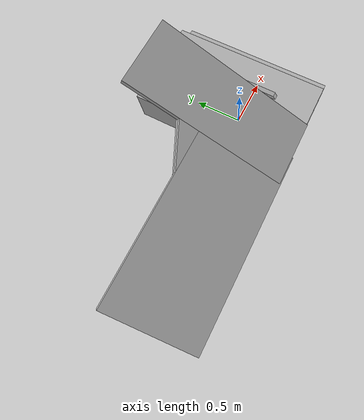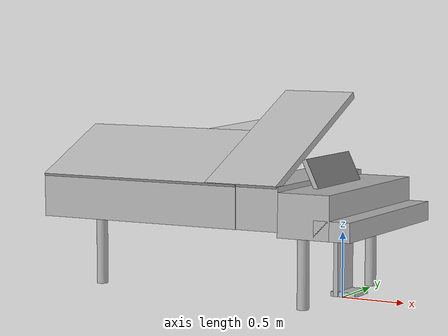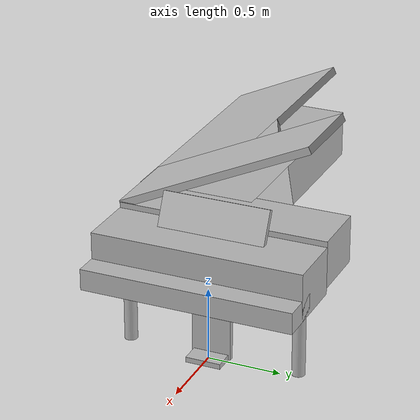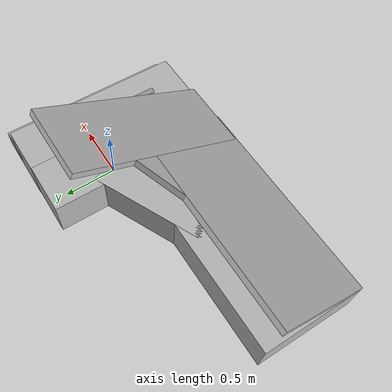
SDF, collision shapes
<?xml version="1.0" encoding="UTF-8"?>
<sdf version="1.6">
  <model name="Piano">
    <static>true</static>
    <link name="base_link">
      <visual name="visual">
        <geometry>
          <mesh>
            <uri>meshes/piano.dae</uri>
          </mesh>
        </geometry>
      </visual>
      <collision name="Box001">
        <pose>0.243129 0.00788122 0.603422 0.0 0.0 0.0</pose>
        <geometry>
          <box>
            <size>0.287229 1.44324 0.144997</size>
          </box>
        </geometry>
      </collision>
      <collision name="Box002">
        <pose>0.0175615 0.00788122 0.695495 0.0 0.0 0.0</pose>
        <geometry>
          <box>
            <size>0.413609 1.44324 0.329144</size>
          </box>
        </geometry>
      </collision>
      <collision name="Box003">
        <pose>-0.392478 0.00788116 0.734841 0.0 0.0 0.0</pose>
        <geometry>
          <box>
            <size>0.413609 1.44324 0.329144</size>
          </box>
        </geometry>
      </collision>
      <collision name="Box004">
        <pose>-1.36447 -0.325266 0.734841 0.0 0.0 0.0</pose>
        <geometry>
          <box>
            <size>1.67512 0.793779 0.329144</size>
          </box>
        </geometry>
      </collision>
      <collision name="Box005">
        <pose>-0.803242 -0.111498 0.734841 0.0 0.0 0.444273</pose>
        <geometry>
          <box>
            <size>0.921315 0.627086 0.329144</size>
          </box>
        </geometry>
      </collision>
      <collision name="Box006">
        <pose>-0.0877448 -0.00134659 0.944505 2.01187 0.0 -1.5708</pose>
        <geometry>
          <box>
            <size>0.73488 0.268691 0.036744</size>
          </box>
        </geometry>
      </collision>
      <collision name="Box007">
        <pose>-0.488626 -0.0578904 1.18515 0.436548 0.0 0.0</pose>
        <geometry>
          <box>
            <size>0.588897 1.44324 0.052663</size>
          </box>
        </geometry>
      </collision>
      <collision name="Box008">
        <pose>-1.36447 -0.359794 1.04429 0.436548 0.0 0.0</pose>
        <geometry>
          <box>
            <size>1.67512 0.793779 0.0526631</size>
          </box>
        </geometry>
      </collision>
      <collision name="Box009">
        <pose>-0.803242 -0.166074 1.13467 0.398713 -0.182742 0.407253</pose>
        <geometry>
          <box>
            <size>0.921315 0.627086 0.0526631</size>
          </box>
        </geometry>
      </collision>
      <collision name="Box010">
        <pose>-0.00645127 0.0227667 0.283169 1.5708 0.0 -1.5708</pose>
        <geometry>
          <box>
            <size>0.268691 0.519009 0.0353184</size>
          </box>
        </geometry>
      </collision>
      <collision name="Box011">
        <pose>0.0450188 0.0232733 0.0405282 0.0 0.0 0.0</pose>
        <geometry>
          <box>
            <size>0.196833 0.240713 0.0358812</size>
          </box>
        </geometry>
      </collision>
      <collision name="Cylinder001">
        <pose>-0.0444827 -0.580177 0.27691 0.0 0.0 0.0</pose>
        <geometry>
          <cylinder>
            <length>0.553819</length>
            <radius>0.0438295</radius>
          </cylinder>
        </geometry>
      </collision>
      <collision name="Cylinder002">
        <pose>-0.0444827 0.607649 0.27691 0.0 0.0 0.0</pose>
        <geometry>
          <cylinder>
            <length>0.553819</length>
            <radius>0.0438295</radius>
          </cylinder>
        </geometry>
      </collision>
      <collision name="Cylinder003">
        <pose>-1.9561 -0.300735 0.27691 0.0 0.0 0.0</pose>
        <geometry>
          <cylinder>
            <length>0.553819</length>
            <radius>0.0438295</radius>
          </cylinder>
        </geometry>
      </collision>
    </link>
  </model>
</sdf>
